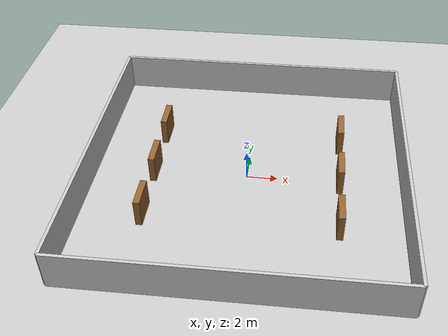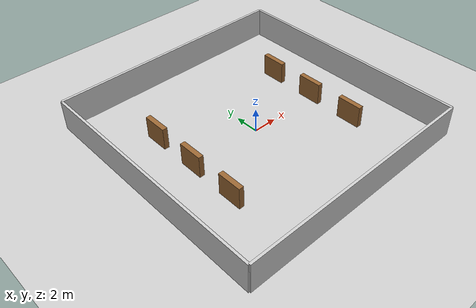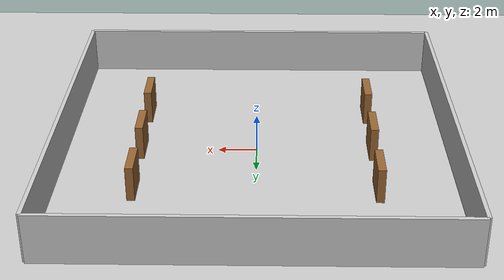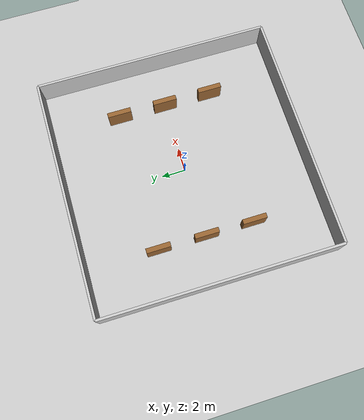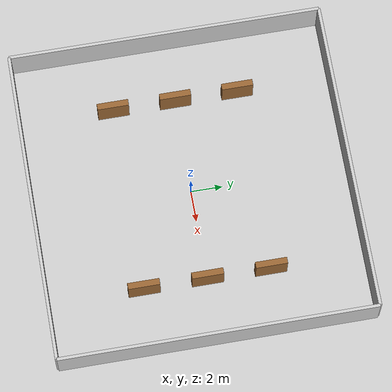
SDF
<?xml version="1.0" ?>
<!--
  Simple warehouse world for TIAGo simulation.
  Contains a ground plane, ambient lighting, and basic shelf structures.
-->
<sdf version="1.6">
  <world name="warehouse">

    <!-- ============================================================
         Physics & Scene
    ============================================================ -->
    <physics type="ode">
      <real_time_update_rate>1000.0</real_time_update_rate>
      <max_step_size>0.001</max_step_size>
      <real_time_factor>1</real_time_factor>
    </physics>

    <scene>
      <ambient>0.4 0.4 0.4 1</ambient>
      <background>0.7 0.7 0.7 1</background>
      <shadows>true</shadows>
    </scene>

    <!-- ============================================================
         Plugins
    ============================================================ -->
    <plugin name="gazebo_ros_state" filename="libgazebo_ros_state.so">
      <ros>
        <remapping>model_states:=gazebo/model_states</remapping>
        <remapping>link_states:=gazebo/link_states</remapping>
      </ros>
      <update_rate>50.0</update_rate>
    </plugin>

    <!-- ============================================================
         Sun (directional light)
    ============================================================ -->
    <include>
      <uri>model://sun</uri>
    </include>

    <!-- ============================================================
         Ground plane
    ============================================================ -->
    <include>
      <uri>model://ground_plane</uri>
    </include>

    <!-- ============================================================
         Warehouse walls
    ============================================================ -->
    <!-- North wall -->
    <model name="wall_north">
      <static>true</static>
      <pose>0 10 1.25 0 0 0</pose>
      <link name="link">
        <collision name="collision">
          <geometry><box><size>20 0.2 2.5</size></box></geometry>
        </collision>
        <visual name="visual">
          <geometry><box><size>20 0.2 2.5</size></box></geometry>
          <material>
            <ambient>0.8 0.8 0.8 1</ambient>
            <diffuse>0.8 0.8 0.8 1</diffuse>
          </material>
        </visual>
      </link>
    </model>

    <!-- South wall -->
    <model name="wall_south">
      <static>true</static>
      <pose>0 -10 1.25 0 0 0</pose>
      <link name="link">
        <collision name="collision">
          <geometry><box><size>20 0.2 2.5</size></box></geometry>
        </collision>
        <visual name="visual">
          <geometry><box><size>20 0.2 2.5</size></box></geometry>
          <material>
            <ambient>0.8 0.8 0.8 1</ambient>
            <diffuse>0.8 0.8 0.8 1</diffuse>
          </material>
        </visual>
      </link>
    </model>

    <!-- East wall -->
    <model name="wall_east">
      <static>true</static>
      <pose>10 0 1.25 0 0 0</pose>
      <link name="link">
        <collision name="collision">
          <geometry><box><size>0.2 20 2.5</size></box></geometry>
        </collision>
        <visual name="visual">
          <geometry><box><size>0.2 20 2.5</size></box></geometry>
          <material>
            <ambient>0.8 0.8 0.8 1</ambient>
            <diffuse>0.8 0.8 0.8 1</diffuse>
          </material>
        </visual>
      </link>
    </model>

    <!-- West wall -->
    <model name="wall_west">
      <static>true</static>
      <pose>-10 0 1.25 0 0 0</pose>
      <link name="link">
        <collision name="collision">
          <geometry><box><size>0.2 20 2.5</size></box></geometry>
        </collision>
        <visual name="visual">
          <geometry><box><size>0.2 20 2.5</size></box></geometry>
          <material>
            <ambient>0.8 0.8 0.8 1</ambient>
            <diffuse>0.8 0.8 0.8 1</diffuse>
          </material>
        </visual>
      </link>
    </model>

    <!-- ============================================================
         Shelving units (Row A — left side)
    ============================================================ -->
    <model name="shelf_A1">
      <static>true</static>
      <pose>-6 4 0.9 0 0 0</pose>
      <link name="link">
        <collision name="collision">
          <geometry><box><size>0.4 2.0 1.8</size></box></geometry>
        </collision>
        <visual name="visual">
          <geometry><box><size>0.4 2.0 1.8</size></box></geometry>
          <material>
            <ambient>0.6 0.4 0.2 1</ambient>
            <diffuse>0.6 0.4 0.2 1</diffuse>
          </material>
        </visual>
      </link>
    </model>

    <model name="shelf_A2">
      <static>true</static>
      <pose>-6 0 0.9 0 0 0</pose>
      <link name="link">
        <collision name="collision">
          <geometry><box><size>0.4 2.0 1.8</size></box></geometry>
        </collision>
        <visual name="visual">
          <geometry><box><size>0.4 2.0 1.8</size></box></geometry>
          <material>
            <ambient>0.6 0.4 0.2 1</ambient>
            <diffuse>0.6 0.4 0.2 1</diffuse>
          </material>
        </visual>
      </link>
    </model>

    <model name="shelf_A3">
      <static>true</static>
      <pose>-6 -4 0.9 0 0 0</pose>
      <link name="link">
        <collision name="collision">
          <geometry><box><size>0.4 2.0 1.8</size></box></geometry>
        </collision>
        <visual name="visual">
          <geometry><box><size>0.4 2.0 1.8</size></box></geometry>
          <material>
            <ambient>0.6 0.4 0.2 1</ambient>
            <diffuse>0.6 0.4 0.2 1</diffuse>
          </material>
        </visual>
      </link>
    </model>

    <!-- ============================================================
         Shelving units (Row B — right side)
    ============================================================ -->
    <model name="shelf_B1">
      <static>true</static>
      <pose>6 4 0.9 0 0 0</pose>
      <link name="link">
        <collision name="collision">
          <geometry><box><size>0.4 2.0 1.8</size></box></geometry>
        </collision>
        <visual name="visual">
          <geometry><box><size>0.4 2.0 1.8</size></box></geometry>
          <material>
            <ambient>0.6 0.4 0.2 1</ambient>
            <diffuse>0.6 0.4 0.2 1</diffuse>
          </material>
        </visual>
      </link>
    </model>

    <model name="shelf_B2">
      <static>true</static>
      <pose>6 0 0.9 0 0 0</pose>
      <link name="link">
        <collision name="collision">
          <geometry><box><size>0.4 2.0 1.8</size></box></geometry>
        </collision>
        <visual name="visual">
          <geometry><box><size>0.4 2.0 1.8</size></box></geometry>
          <material>
            <ambient>0.6 0.4 0.2 1</ambient>
            <diffuse>0.6 0.4 0.2 1</diffuse>
          </material>
        </visual>
      </link>
    </model>

    <model name="shelf_B3">
      <static>true</static>
      <pose>6 -4 0.9 0 0 0</pose>
      <link name="link">
        <collision name="collision">
          <geometry><box><size>0.4 2.0 1.8</size></box></geometry>
        </collision>
        <visual name="visual">
          <geometry><box><size>0.4 2.0 1.8</size></box></geometry>
          <material>
            <ambient>0.6 0.4 0.2 1</ambient>
            <diffuse>0.6 0.4 0.2 1</diffuse>
          </material>
        </visual>
      </link>
    </model>

  </world>
</sdf>
